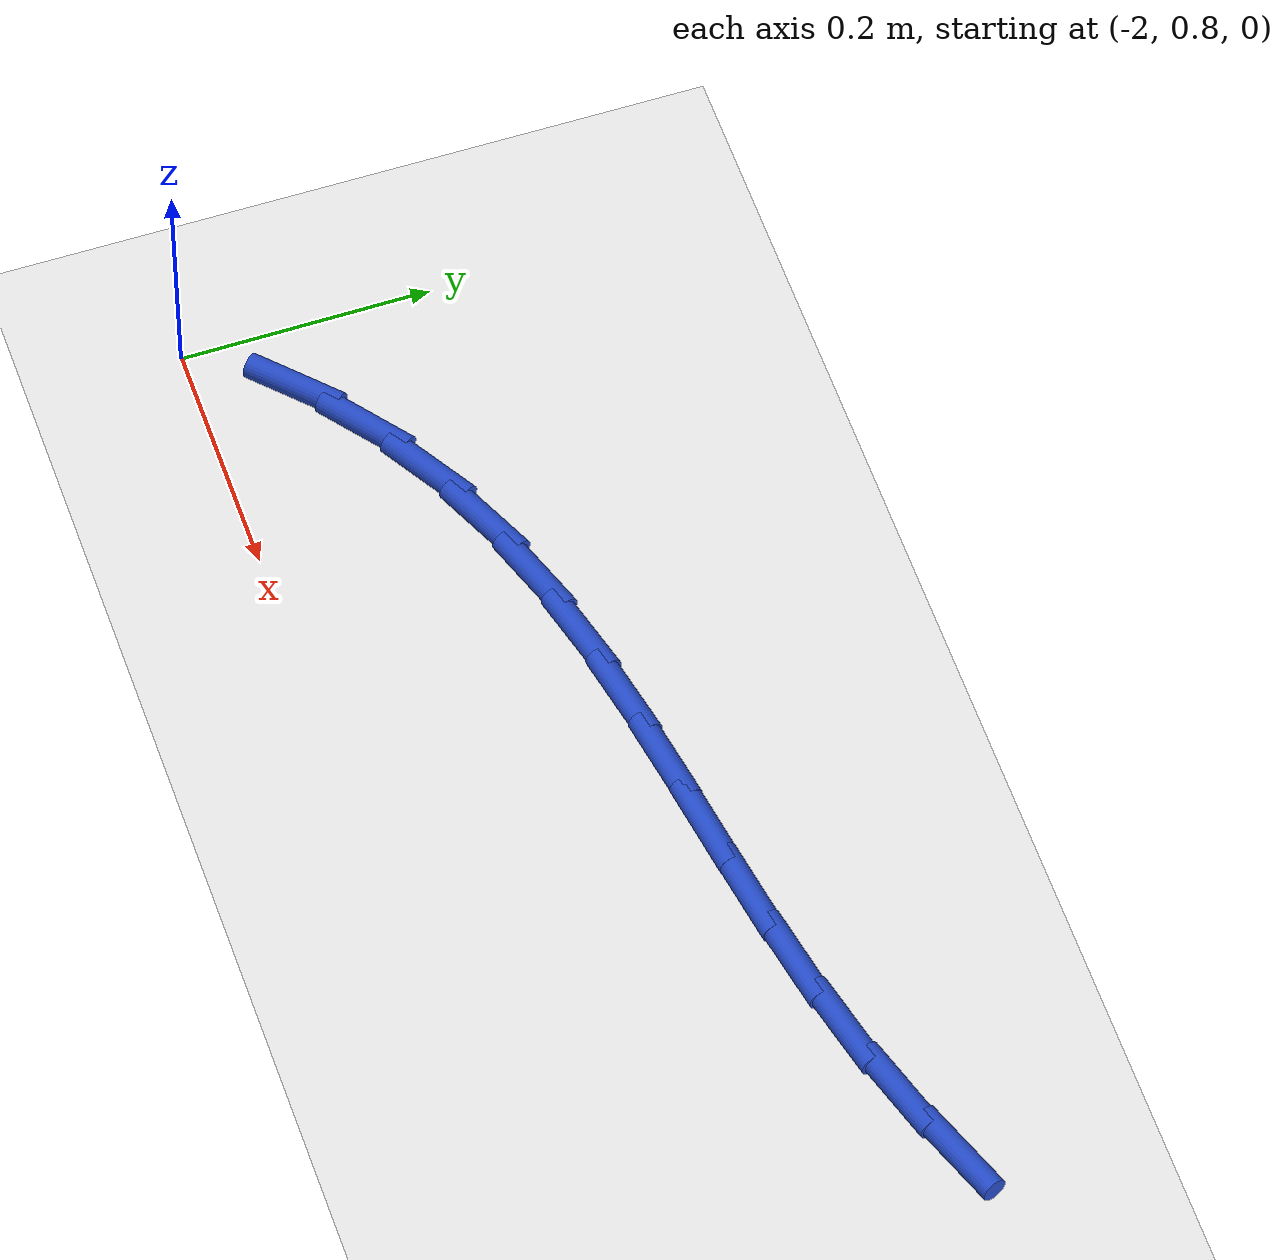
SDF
<sdf version="1.6">
 <world name="default">
  <model name="ground_plane">
   <static>1</static>
   <link name="link">
    <collision name="collision">
     <geometry><plane><normal>0 0 1</normal><size>100 100</size></plane></geometry>
     <surface><friction><ode><mu>100</mu><mu2>50</mu2></ode></friction></surface>
    </collision>
    <visual name="visual">
     <cast_shadows>0</cast_shadows>
     <geometry><plane><normal>0 0 1</normal><size>100 100</size></plane></geometry>
     <material>
      <script><uri>file://media/materials/scripts/gazebo.material</uri><name>Gazebo/WhiteGlow</name></script>
     </material>
    </visual>
   </link>
  </model>
  <model name="line">
   <link name="link_28">
    <pose>-1.1363524252514847 1.11958128907577 0.01 0 1.57 0.34357987317715594</pose>
    <collision name="collision">
     <geometry><cylinder><radius>0.01</radius><length>0.08</length></cylinder></geometry>
    </collision>
    <visual name="visual">
     <material>
      <script><name>Gazebo/Blue</name><uri>file://media/materials/scripts/gazebo.material</uri></script>
     </material>
     <geometry><cylinder><radius>0.01</radius><length>0.08</length></cylinder></geometry>
    </visual>
   </link>
   <link name="link_29">
    <pose>-1.2001900079008005 1.096742128351612 0.01 0 1.57 0.2905136475970411</pose>
    <collision name="collision">
     <geometry><cylinder><radius>0.01</radius><length>0.08</length></cylinder></geometry>
    </collision>
    <visual name="visual">
     <material>
      <script><name>Gazebo/Blue</name><uri>file://media/materials/scripts/gazebo.material</uri></script>
     </material>
     <geometry><cylinder><radius>0.01</radius><length>0.08</length></cylinder></geometry>
    </visual>
   </link>
   <link name="link_30">
    <pose>-1.2648563164668392 1.0774086959086762 0.01 0 1.57 0.22841220267522627</pose>
    <collision name="collision">
     <geometry><cylinder><radius>0.01</radius><length>0.08</length></cylinder></geometry>
    </collision>
    <visual name="visual">
     <material>
      <script><name>Gazebo/Blue</name><uri>file://media/materials/scripts/gazebo.material</uri></script>
     </material>
     <geometry><cylinder><radius>0.01</radius><length>0.08</length></cylinder></geometry>
    </visual>
   </link>
   <link name="link_31">
    <pose>-1.3301532711778485 1.0622291691293373 0.01 0 1.57 0.1836422417840819</pose>
    <collision name="collision">
     <geometry><cylinder><radius>0.01</radius><length>0.08</length></cylinder></geometry>
    </collision>
    <visual name="visual">
     <material>
      <script><name>Gazebo/Blue</name><uri>file://media/materials/scripts/gazebo.material</uri></script>
     </material>
     <geometry><cylinder><radius>0.01</radius><length>0.08</length></cylinder></geometry>
    </visual>
   </link>
   <link name="link_32">
    <pose>-1.3957376325108413 1.0500478651035317 0.01 0 1.57 0.15765236468032962</pose>
    <collision name="collision">
     <geometry><cylinder><radius>0.01</radius><length>0.08</length></cylinder></geometry>
    </collision>
    <visual name="visual">
     <material>
      <script><name>Gazebo/Blue</name><uri>file://media/materials/scripts/gazebo.material</uri></script>
     </material>
     <geometry><cylinder><radius>0.01</radius><length>0.08</length></cylinder></geometry>
    </visual>
   </link>
   <link name="link_33">
    <pose>-1.461259930825229 1.0396316809638082 0.01 0 1.57 0.15065517009536356</pose>
    <collision name="collision">
     <geometry><cylinder><radius>0.01</radius><length>0.08</length></cylinder></geometry>
    </collision>
    <visual name="visual">
     <material>
      <script><name>Gazebo/Blue</name><uri>file://media/materials/scripts/gazebo.material</uri></script>
     </material>
     <geometry><cylinder><radius>0.01</radius><length>0.08</length></cylinder></geometry>
    </visual>
   </link>
   <link name="link_34">
    <pose>-1.5263706964804242 1.029747513842716 0.01 0 1.57 0.16303554796917566</pose>
    <collision name="collision">
     <geometry><cylinder><radius>0.01</radius><length>0.08</length></cylinder></geometry>
    </collision>
    <visual name="visual">
     <material>
      <script><name>Gazebo/Blue</name><uri>file://media/materials/scripts/gazebo.material</uri></script>
     </material>
     <geometry><cylinder><radius>0.01</radius><length>0.08</length></cylinder></geometry>
    </visual>
   </link>
   <link name="link_35">
    <pose>-1.5907204598358393 1.0191622608728035 0.01 0 1.57 0.19544225558334988</pose>
    <collision name="collision">
     <geometry><cylinder><radius>0.01</radius><length>0.08</length></cylinder></geometry>
    </collision>
    <visual name="visual">
     <material>
      <script><name>Gazebo/Blue</name><uri>file://media/materials/scripts/gazebo.material</uri></script>
     </material>
     <geometry><cylinder><radius>0.01</radius><length>0.08</length></cylinder></geometry>
    </visual>
   </link>
   <link name="link_36">
    <pose>-1.6539597512508863 1.0066428191866197 0.01 0 1.57 0.2486604122073715</pose>
    <collision name="collision">
     <geometry><cylinder><radius>0.01</radius><length>0.08</length></cylinder></geometry>
    </collision>
    <visual name="visual">
     <material>
      <script><name>Gazebo/Blue</name><uri>file://media/materials/scripts/gazebo.material</uri></script>
     </material>
     <geometry><cylinder><radius>0.01</radius><length>0.08</length></cylinder></geometry>
    </visual>
   </link>
   <link name="link_37">
    <pose>-1.7157391010849774 0.9909560859167136 0.01 0 1.57 0.32320779838849695</pose>
    <collision name="collision">
     <geometry><cylinder><radius>0.01</radius><length>0.08</length></cylinder></geometry>
    </collision>
    <visual name="visual">
     <material>
      <script><name>Gazebo/Blue</name><uri>file://media/materials/scripts/gazebo.material</uri></script>
     </material>
     <geometry><cylinder><radius>0.01</radius><length>0.08</length></cylinder></geometry>
    </visual>
   </link>
   <link name="link_38">
    <pose>-1.7757090396975255 0.9708689581956341 0.01 0 1.57 0.41861168726267756</pose>
    <collision name="collision">
     <geometry><cylinder><radius>0.01</radius><length>0.08</length></cylinder></geometry>
    </collision>
    <visual name="visual">
     <material>
      <script><name>Gazebo/Blue</name><uri>file://media/materials/scripts/gazebo.material</uri></script>
     </material>
     <geometry><cylinder><radius>0.01</radius><length>0.08</length></cylinder></geometry>
    </visual>
   </link>
   <link name="link_39">
    <pose>-1.8335200974479418 0.9451483331559298 0.01 0 1.57 0.5320024477162836</pose>
    <collision name="collision">
     <geometry><cylinder><radius>0.01</radius><length>0.08</length></cylinder></geometry>
    </collision>
    <visual name="visual">
     <material>
      <script><name>Gazebo/Blue</name><uri>file://media/materials/scripts/gazebo.material</uri></script>
     </material>
     <geometry><cylinder><radius>0.01</radius><length>0.08</length></cylinder></geometry>
    </visual>
   </link>
   <link name="link_40">
    <pose>-1.888820334942425 0.9125980569704181 0.01 0 1.57 0.6475234490509012</pose>
    <collision name="collision">
     <geometry><cylinder><radius>0.01</radius><length>0.08</length></cylinder></geometry>
    </collision>
    <visual name="visual">
     <material>
      <script><name>Gazebo/Blue</name><uri>file://media/materials/scripts/gazebo.material</uri></script>
     </material>
     <geometry><cylinder><radius>0.01</radius><length>0.08</length></cylinder></geometry>
    </visual>
   </link>
   <link name="link_41">
    <pose>-1.941193226144515 0.8729882320545832 0.01 0 1.57 0.7527568760827236</pose>
    <collision name="collision">
     <geometry><cylinder><radius>0.01</radius><length>0.08</length></cylinder></geometry>
    </collision>
    <visual name="visual">
     <material>
      <script><name>Gazebo/Blue</name><uri>file://media/materials/scripts/gazebo.material</uri></script>
     </material>
     <geometry><cylinder><radius>0.01</radius><length>0.08</length></cylinder></geometry>
    </visual>
   </link>
  </model>
 </world>
</sdf>
